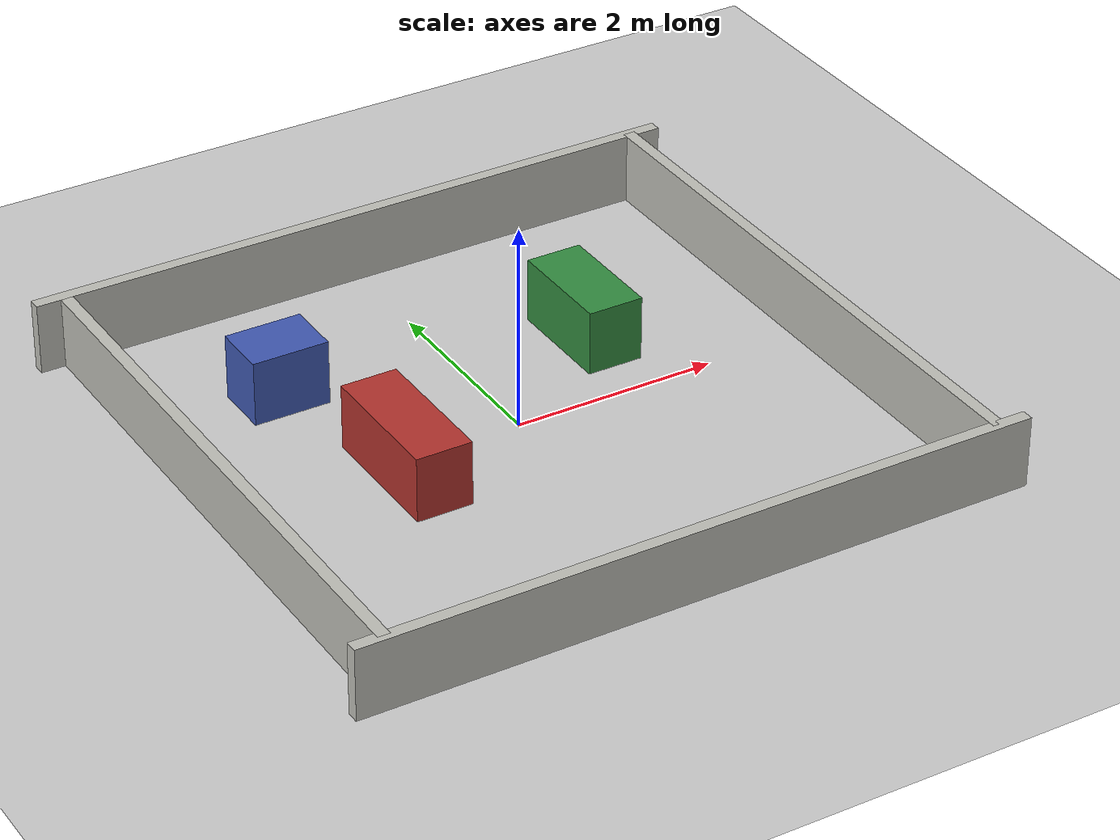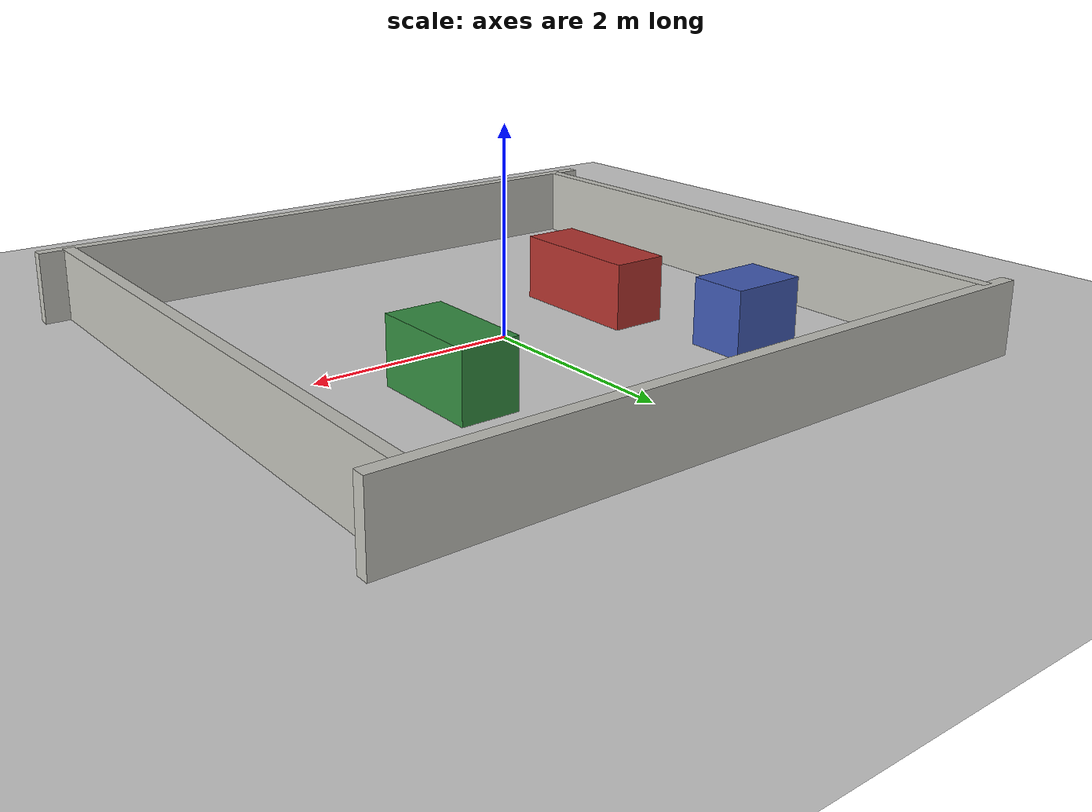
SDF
<?xml version="1.0"?>
<sdf version="1.6">
  <world name="small_room">
    <physics name="default_physics" type="ode">
      <max_step_size>0.001</max_step_size>
      <real_time_factor>1.0</real_time_factor>
      <real_time_update_rate>1000</real_time_update_rate>
    </physics>

    <scene>
      <ambient>0.55 0.55 0.55 1</ambient>
      <background>0.70 0.78 0.86 1</background>
      <shadows>false</shadows>
    </scene>

    <include>
      <uri>model://ground_plane</uri>
    </include>

    <include>
      <uri>model://sun</uri>
    </include>

    <model name="north_wall">
      <static>true</static>
      <pose>0 3.0 0.35 0 0 0</pose>
      <link name="link">
        <collision name="collision"><geometry><box><size>6.6 0.12 0.70</size></box></geometry></collision>
        <visual name="visual"><geometry><box><size>6.6 0.12 0.70</size></box></geometry><material><ambient>0.75 0.75 0.72 1</ambient><diffuse>0.75 0.75 0.72 1</diffuse></material></visual>
      </link>
    </model>

    <model name="south_wall">
      <static>true</static>
      <pose>0 -3.0 0.35 0 0 0</pose>
      <link name="link">
        <collision name="collision"><geometry><box><size>6.6 0.12 0.70</size></box></geometry></collision>
        <visual name="visual"><geometry><box><size>6.6 0.12 0.70</size></box></geometry><material><ambient>0.75 0.75 0.72 1</ambient><diffuse>0.75 0.75 0.72 1</diffuse></material></visual>
      </link>
    </model>

    <model name="east_wall">
      <static>true</static>
      <pose>3.0 0 0.35 0 0 0</pose>
      <link name="link">
        <collision name="collision"><geometry><box><size>0.12 6.0 0.70</size></box></geometry></collision>
        <visual name="visual"><geometry><box><size>0.12 6.0 0.70</size></box></geometry><material><ambient>0.75 0.75 0.72 1</ambient><diffuse>0.75 0.75 0.72 1</diffuse></material></visual>
      </link>
    </model>

    <model name="west_wall">
      <static>true</static>
      <pose>-3.0 0 0.35 0 0 0</pose>
      <link name="link">
        <collision name="collision"><geometry><box><size>0.12 6.0 0.70</size></box></geometry></collision>
        <visual name="visual"><geometry><box><size>0.12 6.0 0.70</size></box></geometry><material><ambient>0.75 0.75 0.72 1</ambient><diffuse>0.75 0.75 0.72 1</diffuse></material></visual>
      </link>
    </model>

    <model name="center_low_box">
      <static>true</static>
      <pose>-1.25 -0.20 0.32 0 0 0</pose>
      <link name="link">
        <collision name="collision"><geometry><box><size>0.55 1.35 0.64</size></box></geometry></collision>
        <visual name="visual"><geometry><box><size>0.55 1.35 0.64</size></box></geometry><material><ambient>0.70 0.20 0.18 1</ambient><diffuse>0.70 0.20 0.18 1</diffuse></material></visual>
      </link>
    </model>

    <model name="east_marker_box">
      <static>true</static>
      <pose>1.25 0.95 0.32 0 0 0</pose>
      <link name="link">
        <collision name="collision"><geometry><box><size>0.55 1.10 0.64</size></box></geometry></collision>
        <visual name="visual"><geometry><box><size>0.55 1.10 0.64</size></box></geometry><material><ambient>0.20 0.55 0.25 1</ambient><diffuse>0.20 0.55 0.25 1</diffuse></material></visual>
      </link>
    </model>

    <model name="north_marker_box">
      <static>true</static>
      <pose>-1.65 1.45 0.32 0 0 0</pose>
      <link name="link">
        <collision name="collision"><geometry><box><size>0.75 0.55 0.64</size></box></geometry></collision>
        <visual name="visual"><geometry><box><size>0.75 0.55 0.64</size></box></geometry><material><ambient>0.25 0.35 0.70 1</ambient><diffuse>0.25 0.35 0.70 1</diffuse></material></visual>
      </link>
    </model>
  </world>
</sdf>
